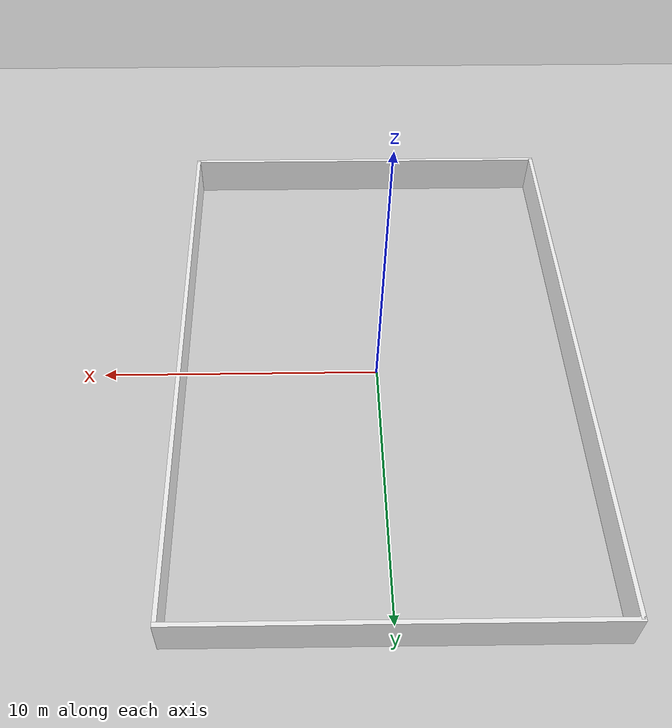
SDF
<?xml version='1.0' encoding='utf-8'?>
<sdf version='1.7'>
  <world name='default'>
    <light name='sun' type='directional'>
      <pose>0 0 10 0 0 0</pose>
      <diffuse>0.8 0.8 0.8 1</diffuse>
      <specular>0.2 0.2 0.2 1</specular>
      <direction>-0.5 0.1 -0.9</direction>
      <cast_shadows>0</cast_shadows>
    </light>
    <model name='ground_plane'>
      <static>1</static>
      <link name='link'>
        <collision name='collision'>
          <geometry><plane><normal>0 0 1</normal><size>100 100</size></plane></geometry>
        </collision>
        <visual name='visual'>
          <geometry><plane><normal>0 0 1</normal><size>100 100</size></plane></geometry>
          <material><ambient>0.75 0.75 0.75 1</ambient><diffuse>0.8 0.8 0.8 1</diffuse></material>
        </visual>
      </link>
    </model>
    <model name='outer_walls'>
      <static>1</static>
      <link name='Wall_0'>
        <collision name='c'>
          <geometry><box><size>14.3 0.15 1.5</size></box></geometry>
          <pose>0 0 0.75 0 0 0</pose>
        </collision>
        <visual name='v'>
          <geometry><box><size>14.3 0.15 1.5</size></box></geometry>
          <pose>0 0 0.75 0 0 0</pose>
          <material><ambient>0.9 0.9 0.9 1</ambient><diffuse>0.95 0.95 0.95 1</diffuse></material>
        </visual>
        <pose>0.0 10.575 0 0 0 0.0</pose>
      </link>
      <link name='Wall_1'>
        <collision name='c'>
          <geometry><box><size>14.3 0.15 1.5</size></box></geometry>
          <pose>0 0 0.75 0 0 0</pose>
        </collision>
        <visual name='v'>
          <geometry><box><size>14.3 0.15 1.5</size></box></geometry>
          <pose>0 0 0.75 0 0 0</pose>
          <material><ambient>0.9 0.9 0.9 1</ambient><diffuse>0.95 0.95 0.95 1</diffuse></material>
        </visual>
        <pose>0.0 -10.575 0 0 0 0.0</pose>
      </link>
      <link name='Wall_2'>
        <collision name='c'>
          <geometry><box><size>21.15 0.15 1.5</size></box></geometry>
          <pose>0 0 0.75 0 0 0</pose>
        </collision>
        <visual name='v'>
          <geometry><box><size>21.15 0.15 1.5</size></box></geometry>
          <pose>0 0 0.75 0 0 0</pose>
          <material><ambient>0.9 0.9 0.9 1</ambient><diffuse>0.95 0.95 0.95 1</diffuse></material>
        </visual>
        <pose>-7.075 0.0 0 0 0 1.5708</pose>
      </link>
      <link name='Wall_3'>
        <collision name='c'>
          <geometry><box><size>21.15 0.15 1.5</size></box></geometry>
          <pose>0 0 0.75 0 0 0</pose>
        </collision>
        <visual name='v'>
          <geometry><box><size>21.15 0.15 1.5</size></box></geometry>
          <pose>0 0 0.75 0 0 0</pose>
          <material><ambient>0.9 0.9 0.9 1</ambient><diffuse>0.95 0.95 0.95 1</diffuse></material>
        </visual>
        <pose>7.075 0.0 0 0 0 1.5708</pose>
      </link>
    </model>
    <physics type='ode'>
      <max_step_size>0.001</max_step_size>
      <real_time_update_rate>1000</real_time_update_rate>
    </physics>
  </world>
</sdf>
